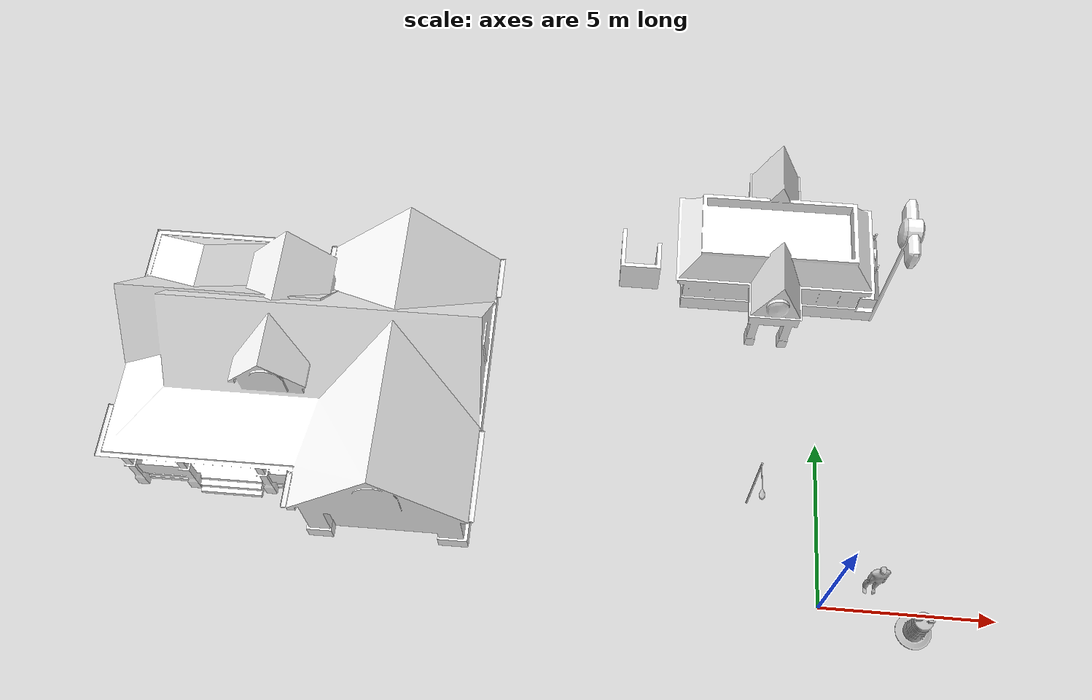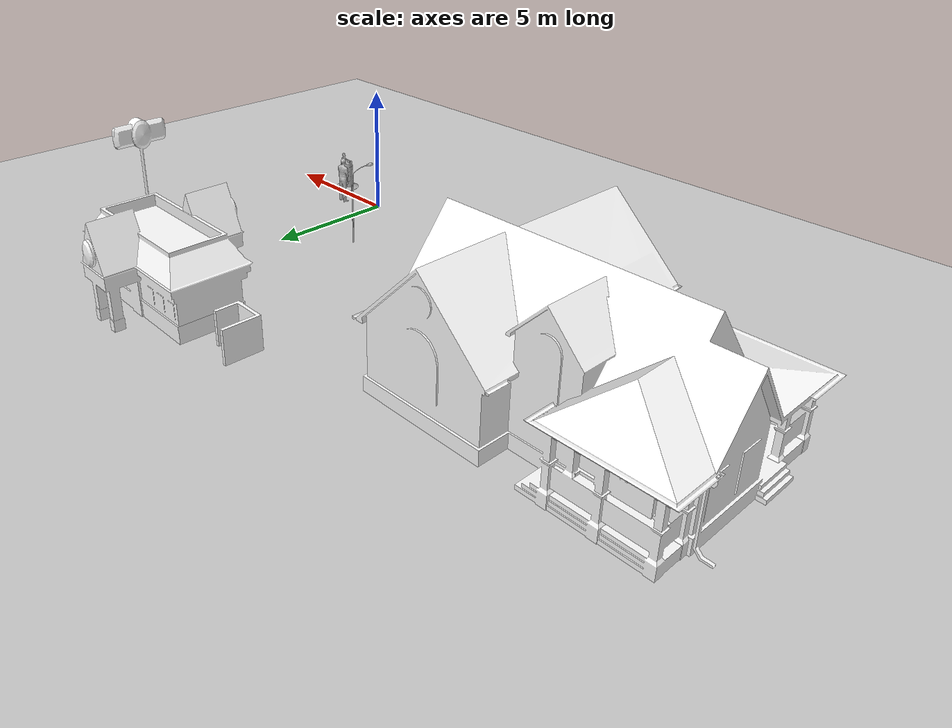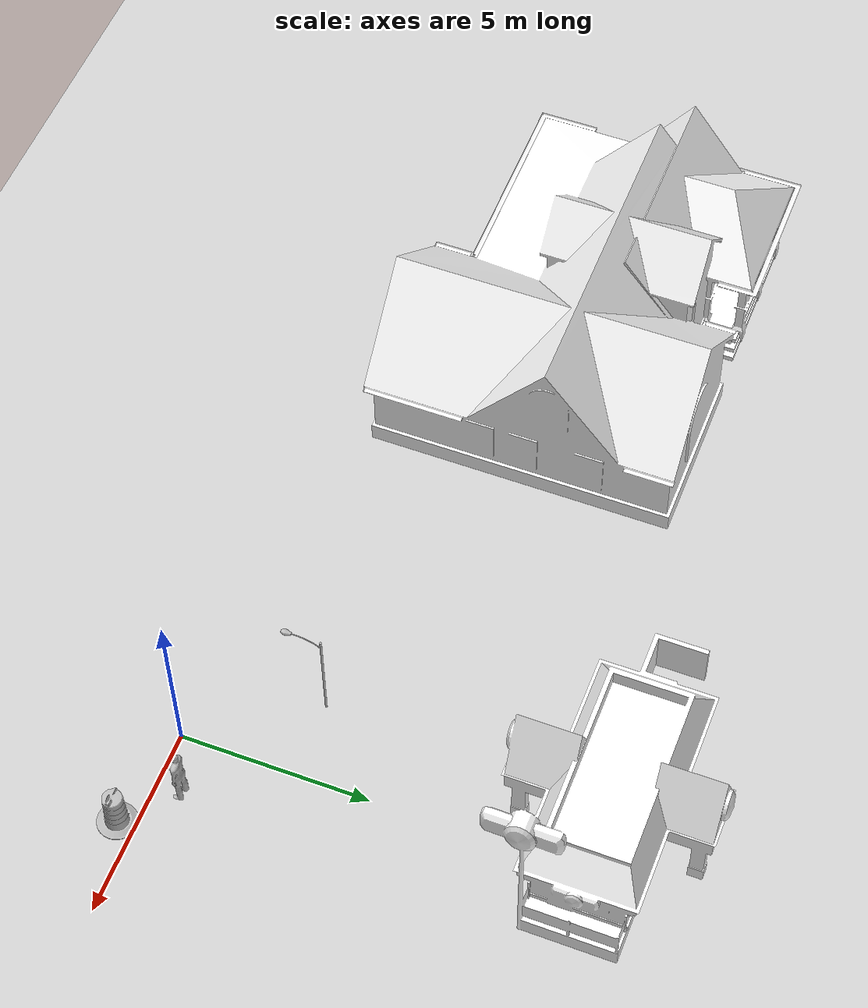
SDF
<sdf version="1.6">
 <world name="default">
  <light name="sun" type="directional">
   <pose>0 0 10 0 -0 0</pose>
   <diffuse>0.8 0.8 0.8 1</diffuse>
   <specular>0.2 0.2 0.2 1</specular>
   <attenuation>
    <range>1000</range>
    <constant>0.9</constant>
    <linear>0.01</linear>
    <quadratic>0.001</quadratic>
   </attenuation>
   <direction>-0.5 0.1 -0.9</direction>
  </light>
  <model name="ground_plane">
   <static>1</static>
   <link name="link">
    <collision name="collision">
     <geometry><plane><normal>0 0 1</normal><size>100 100</size></plane></geometry>
     <surface><friction><ode><mu>100</mu><mu2>50</mu2></ode></friction></surface>
    </collision>
    <visual name="visual">
     <cast_shadows>0</cast_shadows>
     <geometry><plane><normal>0 0 1</normal><size>100 100</size></plane></geometry>
     <material>
      <script><uri>file://media/materials/scripts/gazebo.material</uri><name>Gazebo/Grey</name></script>
     </material>
    </visual>
   </link>
  </model>
  <gravity>0 0 -9.8</gravity>
  <magnetic_field>6e-06 2.3e-05 -4.2e-05</magnetic_field>
  <atmosphere type="adiabatic"/>
  <physics name="default_physics" default="0" type="ode">
   <max_step_size>0.001</max_step_size>
   <real_time_factor>1</real_time_factor>
   <real_time_update_rate>1000</real_time_update_rate>
  </physics>
  <scene><ambient>0.4 0.4 0.4 1</ambient><background>0.7 0.7 0.7 1</background><shadows>1</shadows></scene>
  <spherical_coordinates>
   <surface_model>EARTH_WGS84</surface_model>
   <latitude_deg>0</latitude_deg>
   <longitude_deg>0</longitude_deg>
   <elevation>0</elevation>
   <heading_deg>0</heading_deg>
  </spherical_coordinates>
  <model name="House 1">
   <static>1</static>
   <link name="link">
    <collision name="collision">
     <geometry><mesh><uri>model://house_1/meshes/house_1.dae</uri><scale>1 1 1</scale></mesh></geometry>
    </collision>
    <visual name="visual">
     <geometry><mesh><uri>model://house_1/meshes/house_1.dae</uri><scale>1 1 1</scale></mesh></geometry>
     <material>
      <script>
       <uri>model://house_1/materials/scripts</uri>
       <uri>model://house_1/materials/textures</uri>
       <name>House_1/Diffuse</name>
      </script>
      <shader type="normal_map_object_space"><normal_map>House_1_Normal.png</normal_map></shader>
     </material>
    </visual>
   </link>
   <pose>-14.9931 5.43488 0 0 -0 0</pose>
  </model>
  <model name="person_standing">
   <link name="link">
    <inertial>
     <pose>0 -0.1 0.95 0 -0 0</pose>
     <mass>80</mass>
     <inertia><ixx>24.88</ixx><ixy>0</ixy><ixz>0</ixz><iyy>25.73</iyy><iyz>0</iyz><izz>2.48</izz></inertia>
    </inertial>
    <collision name="bottom">
     <pose>0 -0.1 0.01 0 -0 0</pose>
     <geometry><box><size>0.5 0.35 0.02</size></box></geometry>
    </collision>
    <collision name="person">
     <pose>0 0 0.02 0.04 -0 0</pose>
     <geometry><mesh><uri>model://person_standing/meshes/standing.dae</uri><scale>1 1 1</scale></mesh></geometry>
    </collision>
    <visual name="visual">
     <pose>0 0 0.02 0.04 -0 0</pose>
     <geometry><mesh><uri>model://person_standing/meshes/standing.dae</uri><scale>1 1 1</scale></mesh></geometry>
    </visual>
   </link>
   <pose>1.45493 0.761002 -0 1e-06 -1e-06 -0.001153</pose>
  </model>
  <model name="Fast Food">
   <static>1</static>
   <link name="link">
    <pose>0 0 1.57966 0 -0 0</pose>
    <collision name="collision">
     <geometry><mesh><uri>model://fast_food/meshes/fast_food.dae</uri><scale>1 1 1</scale></mesh></geometry>
    </collision>
    <visual name="visual">
     <geometry><mesh><uri>model://fast_food/meshes/fast_food.dae</uri><scale>1 1 1</scale></mesh></geometry>
     <material>
      <script>
       <uri>model://fast_food/materials/scripts</uri>
       <uri>model://fast_food/materials/textures</uri>
       <name>FastFood/Diffuse</name>
      </script>
      <shader type="normal_map_object_space"><normal_map>FastFood_Normal.png</normal_map></shader>
     </material>
    </visual>
   </link>
   <pose>-1.5347 10.7353 0 0 -0 0</pose>
  </model>
  <model name="Construction Barrel">
   <link name="link">
    <inertial>
     <pose>0 0 0.4 0 -0 0</pose>
     <mass>500</mass>
     <inertia><ixx>51.2096</ixx><iyy>51.2096</iyy><izz>25</izz><ixy>0</ixy><ixz>0</ixz><iyz>0</iyz></inertia>
    </inertial>
    <collision name="collision">
     <geometry>
      <mesh><uri>model://construction_barrel/meshes/construction_barrel.dae</uri><scale>1 1 1</scale></mesh>
     </geometry>
    </collision>
    <visual name="visual">
     <geometry>
      <mesh><uri>model://construction_barrel/meshes/construction_barrel.dae</uri><scale>1 1 1</scale></mesh>
     </geometry>
    </visual>
   </link>
   <pose>2.65771 -0.466186 1e-06 2e-06 3e-06 -8e-06</pose>
  </model>
  <model name="Lamp Post">
   <static>1</static>
   <link name="link">
    <collision name="collision">
     <geometry><mesh><uri>model://lamp_post/meshes/lamp_post.dae</uri><scale>1 1 1</scale></mesh></geometry>
    </collision>
    <visual name="visual">
     <geometry><mesh><uri>model://lamp_post/meshes/lamp_post.dae</uri><scale>1 1 1</scale></mesh></geometry>
    </visual>
   </link>
   <pose>-2.04403 3.00749 0 0 -0 0</pose>
  </model>
 </world>
</sdf>
